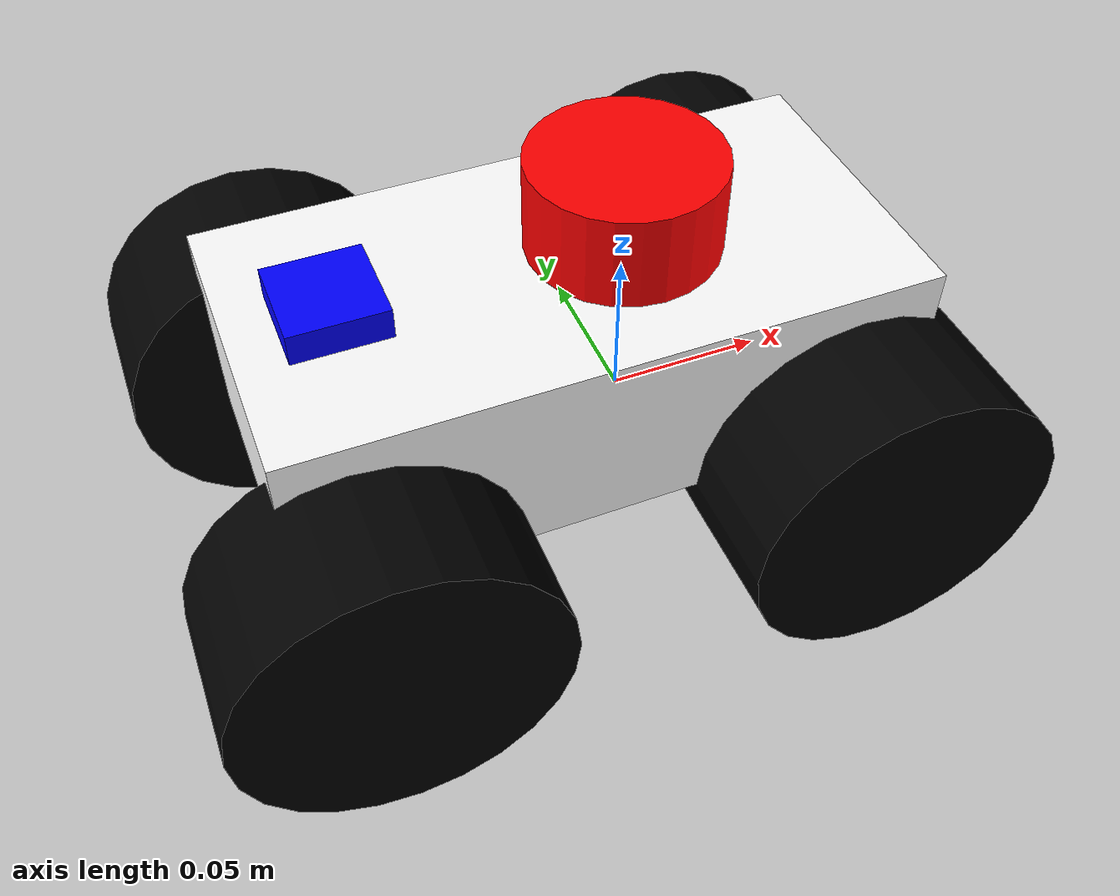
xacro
<?xml version="1.0"?>
<robot xmlns:xacro="http://ros.org/wiki/xacro" name="ferrari" >

    <xacro:arg name="ros_namespace" default=""/>
    <xacro:property name="robot_ns" value="$(arg ros_namespace)"/>

    <!--MACROS-->
    <xacro:include filename="macros.xacro"/>

    <!-- COLOR-->
    <material name = "white">
        <color rgba = "1 1 1 1"/>
    </material>

    <material name = "blue">
        <color rgba = "0 0 1 1"/>
    </material>

    <material name="black">
        <color rgba="0 0 0 1"/>
    </material>

    <material name="red">
        <color rgba="1 0 0 1"/>
    </material>

    <!--BASE LINK-->
    <link name = "base_link">
    </link>

    <!--BODY LINK-->
    <joint name = "body_joint" type = "fixed">
        <parent link = "base_link"/>
        <child link = "body" />
        <origin xyz = "-0.12 0 0"/>
    </joint>

    <link name = "body">
        <visual>
            <origin xyz = "0.1 0 0.03"/>
            <geometry>
                <box size = "0.2 0.1 0.06"/>
            </geometry>
            <material name = "white"/>
        </visual>
        <collision>
            <origin xyz = "0.1 0 0.03"/>
            <geometry>
                <box size = "0.2 0.1 0.06"/>
            </geometry>
        </collision>
        <xacro:inertial_box mass="0.5" x="0.2" y="0.1" z="0.06">
            <origin xyz="0.1 0 0.03" rpy="0 0 0"/>
        </xacro:inertial_box>
    </link>

    <!-- 앞바퀴용 조향 링크 두 개 추가 -->
    <link name="front_left_steer_link">
        <visual>
            <geometry>
                <box size="0.01 0.01 0.01"/>
            </geometry>
        </visual>
        <collision>
            <geometry>
                <box size="0.01 0.01 0.01"/>
            </geometry>
        </collision>
        <xacro:inertial_box mass="0.02" x="0.01" y="0.01" z="0.01">
            <origin xyz="0 0 0" rpy="0 0 0"/>
        </xacro:inertial_box>
    </link>

    <link name="front_right_steer_link">
        <visual>
            <geometry>
                <box size="0.01 0.01 0.01"/>
            </geometry>
        </visual>
        <collision>
            <geometry>
                <box size="0.01 0.01 0.01"/>
            </geometry>
        </collision>
        <xacro:inertial_box mass="0.02" x="0.01" y="0.01" z="0.01">
            <origin xyz="0 0 0" rpy="0 0 0"/>
        </xacro:inertial_box>
    </link>

    <!-- 앞바퀴 조향 조인트: yaw 축, ±20deg = ±0.349066rad -->
    <joint name="front_left_steer_joint" type="revolute">
        <parent link="base_link"/>
        <child  link="front_left_steer_link"/>
        <origin xyz="0.055 0.065 0" rpy="0 0 0"/>   <!-- 원래 앞바퀴 위치와 같게 -->
        <axis xyz="0 0 1"/>
        <limit lower="-0.349066" upper="0.349066" effort="30" velocity="2.0"/>
    </joint>

    <joint name="front_right_steer_joint" type="revolute">
        <parent link="base_link"/>
        <child  link="front_right_steer_link"/>
        <origin xyz="0.055 -0.065 0" rpy="0 0 0"/>
        <axis xyz="0 0 1"/>
        <limit lower="-0.349066" upper="0.349066" effort="30" velocity="2.0"/>
    </joint>

    <!-- FRONT LEFT WHEEL -->
    <xacro:wheel_link name="front_left_wheel" parent_link="front_left_steer_link"
                  xyz="0 0 0" rpy="-${pi/2} 0 0" direction="1"/>

    <gazebo reference = "front_left_wheel">
        <material>Gazebo/Black</material>
    </gazebo>

    <!-- FRONT RIGHT WHEEL -->
    <xacro:wheel_link name="front_right_wheel" parent_link="front_right_steer_link"
                  xyz="0 0 0" rpy="${pi/2} 0 0" direction="-1"/>

    <gazebo reference = "front_right_wheel">
        <material>Gazebo/Black</material>
    </gazebo>

    <!-- REAR LEFT WHEEL -->
    <xacro:wheel_link name="rear_left_wheel" parent_link="base_link"
                  xyz="-0.1 0.065 0" rpy="-${pi/2} 0 0" direction="1"/>

    <gazebo reference = "rear_left_wheel">
        <material>Gazebo/Black</material>
    </gazebo>

    <!-- REAR RIGHT WHEEL -->
    <xacro:wheel_link name="rear_right_wheel" parent_link="base_link"
                  xyz="-0.1 -0.065 0" rpy="${pi/2} 0 0" direction="-1"/>

    <gazebo reference = "rear_right_wheel">
        <material>Gazebo/Black</material>
    </gazebo>

    <!-- CASTER WHEEL LINK -->
    <joint name="caster_wheel_joint" type="fixed">
        <parent link="body"/>
        <child link="caster_wheel"/>
        <origin xyz="0.03 0 0"/>
    </joint>

    <link name="caster_wheel">
        <visual>
            <geometry>
                <sphere radius = "0.03"/>
            </geometry>
            <material name = "black"/>
        </visual>
        <collision>
            <geometry>
                <sphere radius = "0.03"/>
            </geometry>
        </collision>
        <xacro:inertial_sphere mass="0.1" radius="0.03">
            <origin xyz="0 0 0" rpy="0 0 0"/>
        </xacro:inertial_sphere>
    </link>

    <gazebo reference = "caster_wheel">
        <material>Gazebo/Blue</material>

        <mu1 value="0.001"/>
        <mu2 value="0.001"/>
    </gazebo>

    <!--LiDAR-->
    <joint name = "laser_joint" type = "fixed">
        <parent link = "base_link"/>
        <child link = "laser_frame"/>
        <origin xyz = "0 0 0.075" rpy="0 0 0"/>
    </joint>

    <link name="laser_frame">
        <visual>
            <geometry>
                <cylinder radius="0.03" length="0.03"/>
            </geometry>
            <material name = "red"/>
        </visual>
        <collision>
            <geometry>
                <cylinder radius="0.03" length="0.03"/>
            </geometry>
        </collision>
    </link>

    <!-- CAMERA -->
    <joint name = "camera_joint" type = "fixed">
        <parent link = "body"/>
        <child link = "camera_link"/>
        <origin xyz = "0.20 0 0.03" rpy="0 0 0"/>
    </joint>

    <link name = "camera_link">
        <visual>
            <geometry>
                <box size = "0.01 0.03 0.03"/>
            </geometry>
            <material name = "red"/>
        </visual>
        <collision>
            <geometry>
                <box size = "0.01 0.03 0.03"/>
            </geometry>
        </collision>
    </link>

    <joint name = "camera_optical_joint" type = "fixed">
        <parent link = "camera_link"/>
        <child link = "camera_link_optical"/>
        <origin xyz = "0 0 0" rpy = "${-pi/2} 0 ${pi/2}"/>
    </joint>

    <link name = "camera_link_optical">
    </link>

    <!-- IMU -->
    <joint name = "imu_link" type = "fixed">
        <parent link = "body"/>
        <child link = "imu_link"/>
        <origin xyz = "0.03 0 0.065" rpy = "0 0 0"/>
    </joint>

    <link name = "imu_link">
        <visual>
            <geometry>
                <box size = "0.03 0.03 0.01"/>
            </geometry>
            <material name = "blue"/>
        </visual>
        <collision>
            <geometry>
                <box size = "0.03 0.01 0.03"/>
            </geometry>
        </collision>
    </link>

    <!--GAZEBO-->
    <xacro:include filename="ackermann.xacro"/>
    <xacro:include filename="lidar.xacro"/>
    <xacro:include filename="camera.xacro"/>
    <xacro:include filename="imu.xacro"/>

    <xacro:add_gazebo_and_ros2_control ros_namespace="${robot_ns}"/>
    <xacro:add_lidar ros_namespace="${robot_ns}"/>
    <xacro:add_camera ros_namespace="${robot_ns}"/>
    <xacro:add_imu ros_namespace="${robot_ns}"/>

</robot>

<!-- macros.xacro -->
<robot xmlns:xacro="http://www.ros.org/wiki/xacro" >
    <xacro:macro name = "inertial_sphere" params="mass radius *origin">
        <inertial>
            <xacro:insert_block name="origin"/>
            <mass value="${mass}" />
            <inertia ixx="${(2/5)*mass*(radius*radius)}" ixy="0.0" ixz="0.0"
                    iyy="${(2/5)*mass*(radius*radius)}" iyz = "0.0"
                    izz="${(2/5)*mass*(radius*radius)}" />
        </inertial>
    </xacro:macro>

    <xacro:macro name = "inertial_box" params = "mass x y z *origin">
        <inertial>
            <xacro:insert_block name="origin"/>
            <mass value="${mass}"/>
            <inertia ixx="${(1/12)*mass*(y*y+z*z)}" ixy="0.0" ixz="0.0"
                    iyy="${(1/12)*mass*(x*x+z*z)}" iyz = "0.0"
                    izz="${(1/12)*mass*(x*x+y*y)}" />
        </inertial>
    </xacro:macro>

    <xacro:macro name = "inertial_cylinder" params = "mass length radius *origin">
        <inertial>
            <xacro:insert_block name="origin"/>
            <mass value="${mass}"/>
            <inertia ixx="${(1/12)*mass*(3*radius*radius+length*length)}" ixy="0.0" ixz="0.0"
                    iyy="${(1/12)*mass*(3*radius*radius+length*length)}" iyz = "0.0"
                    izz="${(1/2)*mass*(radius*radius)}" />
        </inertial>
    </xacro:macro>

    <!-- wheel macro -->
    <xacro:macro name="wheel_link" params="name parent_link xyz rpy direction joint_name:=''">
        <xacro:property name="wheel_joint_name" value="${joint_name if joint_name else name + '_joint'}"/>

        <joint name="${wheel_joint_name}" type="continuous">
            <parent link="${parent_link}"/>
            <child link="${name}"/>
            <origin xyz="${xyz}" rpy="0 0 0"/>
            <axis xyz="0 1 0"/>
        </joint>

        <link name="${name}">
            <visual>
                <origin xyz="0 0 0" rpy="${rpy}"/>
                <geometry>
                    <cylinder radius="0.05" length="0.05"/>
                </geometry>
                <material name="black"/>
            </visual>
            <collision>
                <origin xyz="0 0 0" rpy="${rpy}"/>
                <geometry>
                    <cylinder radius="0.05" length="0.05"/>
                </geometry>
            </collision>

            <xacro:inertial_cylinder mass="0.1" length="0.05" radius="0.05">
                <origin xyz="0 0 0" rpy="0 0 0"/>
            </xacro:inertial_cylinder>
        </link>
    </xacro:macro>
</robot>

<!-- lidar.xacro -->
<robot xmlns:xacro="http://www.ros.org/wiki/xacro">

    <xacro:macro name="add_lidar" params="frame_suffix:='' ros_namespace:=''">
        <xacro:property name="lidar_frame" value="${'laser_frame' + frame_suffix}"/>
        <xacro:property name="lidar_sensor_name" value="${'laser' + frame_suffix}"/>
        <xacro:property name="lidar_topic" value="${'/' + ros_namespace + '/scan' if ros_namespace != '' else 'scan'}"/>

        <gazebo reference="${lidar_frame}">
            <material>Gazebo/Red</material>
            <sensor name="${lidar_sensor_name}" type="ray">
                <pose>0 0 0 0 0 0</pose>
                <visualize>true</visualize>
                <update_rate>10</update_rate>
                <ray>
                    <scan>
                        <horizontal>
                            <samples>360</samples>
                            <min_angle>-3.14</min_angle>
                            <max_angle>3.14</max_angle>
                        </horizontal>
                    </scan>
                    <range>
                        <min>0.3</min>
                        <max>12</max>
                    </range>
                </ray>
                <plugin name="${'laser_controller' + frame_suffix}" filename="libgazebo_ros_ray_sensor.so">
                    <ros>
                        <argument>~/out:=${lidar_topic}</argument>
                    </ros>
                    <output_type>sensor_msgs/LaserScan</output_type>
                    <frame_name>${lidar_frame}</frame_name>
                </plugin>
            </sensor>
        </gazebo>
    </xacro:macro>

</robot>

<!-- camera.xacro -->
<robot xmlns:xacro="http://www.ros.org/wiki/xacro">

    <xacro:macro name="add_camera" params="frame_suffix:='' ros_namespace:='' camera_topic_prefix:='camera' camera_sensor_name:='camera'">
        <xacro:property name="camera_link" value="${'camera_link' + frame_suffix}"/>
        <xacro:property name="camera_optical_link" value="${'camera_link_optical' + frame_suffix}"/>
        <xacro:property name="camera_sensor_name_value" value="${camera_sensor_name}"/>
        <xacro:property name="camera_topic_prefix_full" value="${'/' + ros_namespace + '/' + camera_topic_prefix if ros_namespace != '' else camera_topic_prefix}"/>

        <gazebo reference="${camera_link}">
            <material>Gazebo/Red</material>
            <sensor name="${camera_sensor_name_value}" type="camera">
                <pose>0 0 0 0 0 0</pose>
                <visualize>true</visualize>
                <update_rate>10</update_rate>
                <camera>
                    <horizontal_fov>1.089</horizontal_fov>
                    <image>
                        <format>B8G8R8</format>
                        <width>640</width>
                        <height>480</height>
                    </image>
                    <clip>
                        <near>0.05</near>
                        <far>8.0</far>
                    </clip>
                </camera>
                <plugin name="${'camera_controller' + frame_suffix}" filename="libgazebo_ros_camera.so">
                    <ros>
                        <argument>~/image_raw:=${camera_topic_prefix_full}/image_raw</argument>
                        <argument>~/camera_info:=${camera_topic_prefix_full}/camera_info</argument>
                    </ros>
                    <frame_name>${camera_optical_link}</frame_name>
                    <min_depth>0.1</min_depth>
                    <max_depth>100.0</max_depth>
                </plugin>
            </sensor>
        </gazebo>
    </xacro:macro>

</robot>

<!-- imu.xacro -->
<robot xmlns:xacro="http://www.ros.org/wiki/xacro">

  <xacro:macro name="add_imu" params="frame_suffix:='' ros_namespace:=''">
    <xacro:property name="imu_link_name" value="${'imu_link' + frame_suffix}"/>
    <xacro:property name="imu_sensor_name" value="${'imu' + frame_suffix}"/>
    <xacro:property name="imu_topic" value="${'/' + ros_namespace + '/imu/data' if ros_namespace != '' else 'imu/data'}"/>

    <!-- imu_link 또는 imu_frame 이름의 링크가 URDF 안에 존재해야 합니다 -->
    <gazebo reference="${imu_link_name}">
      <material>Gazebo/Blue</material>

      <!-- Gazebo IMU 센서 정의 -->
      <sensor name="${imu_sensor_name}" type="imu">
        <pose>0 0 0 0 0 0</pose>
        <visualize>false</visualize>
        <always_on>true</always_on>
        <update_rate>100</update_rate>

        <!-- 노이즈 모델: 가우시안 예시값. 필요에 따라 조정 -->
        <imu>
          <angular_velocity>
            <x>
              <noise type="gaussian">
                <mean>0.0</mean>
                <stddev>0.002</stddev>
                <bias_mean>0.0</bias_mean>
                <bias_stddev>0.0002</bias_stddev>
              </noise>
            </x>
            <y>
              <noise type="gaussian">
                <mean>0.0</mean>
                <stddev>0.002</stddev>
                <bias_mean>0.0</bias_mean>
                <bias_stddev>0.0002</bias_stddev>
              </noise>
            </y>
            <z>
              <noise type="gaussian">
                <mean>0.0</mean>
                <stddev>0.002</stddev>
                <bias_mean>0.0</bias_mean>
                <bias_stddev>0.0002</bias_stddev>
              </noise>
            </z>
          </angular_velocity>

          <linear_acceleration>
            <x>
              <noise type="gaussian">
                <mean>0.0</mean>
                <stddev>0.1</stddev>
                <bias_mean>0.0</bias_mean>
                <bias_stddev>0.01</bias_stddev>
              </noise>
            </x>
            <y>
              <noise type="gaussian">
                <mean>0.0</mean>
                <stddev>0.1</stddev>
                <bias_mean>0.0</bias_mean>
                <bias_stddev>0.01</bias_stddev>
              </noise>
            </y>
            <z>
              <noise type="gaussian">
                <mean>0.0</mean>
                <stddev>0.1</stddev>
                <bias_mean>0.0</bias_mean>
                <bias_stddev>0.01</bias_stddev>
              </noise>
            </z>
          </linear_acceleration>
        </imu>

        <!-- ROS2 Foxy + Gazebo Classic용 IMU 플러그인 -->
        <plugin name="${'imu_plugin' + frame_suffix}" filename="libgazebo_ros_imu_sensor.so">
          <ros>
            <!-- ~/out 기본 토픽을 원하는 이름으로 리매핑 -->
            <argument>~/out:=${imu_topic}</argument>
          </ros>
          <frame_name>${imu_link_name}</frame_name>
        </plugin>
      </sensor>
    </gazebo>
  </xacro:macro>

</robot>
